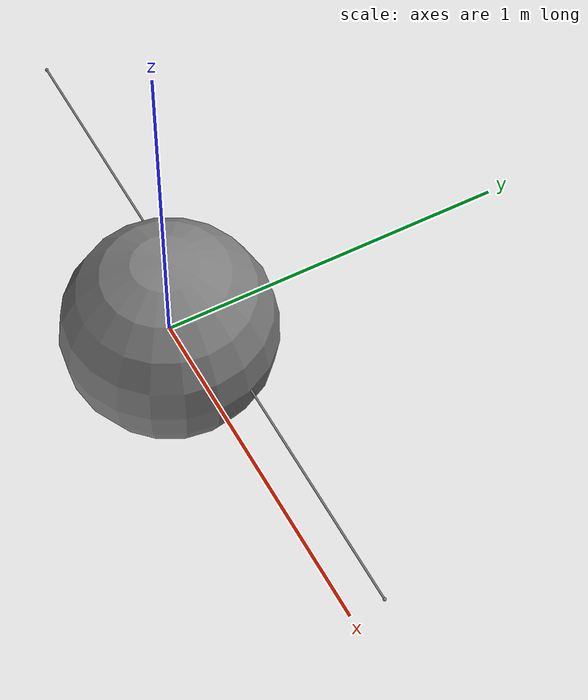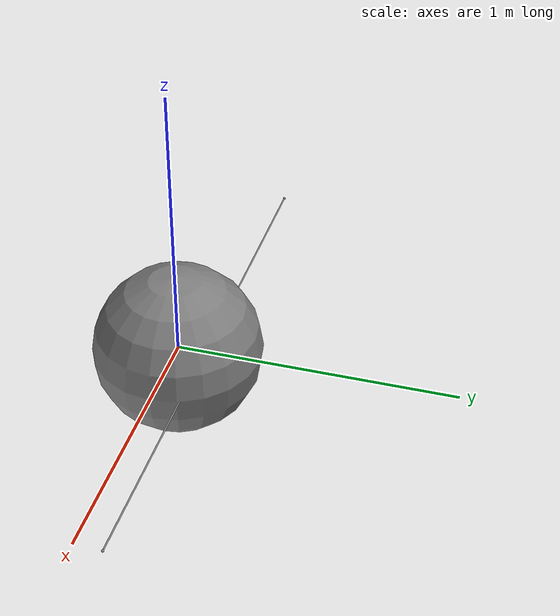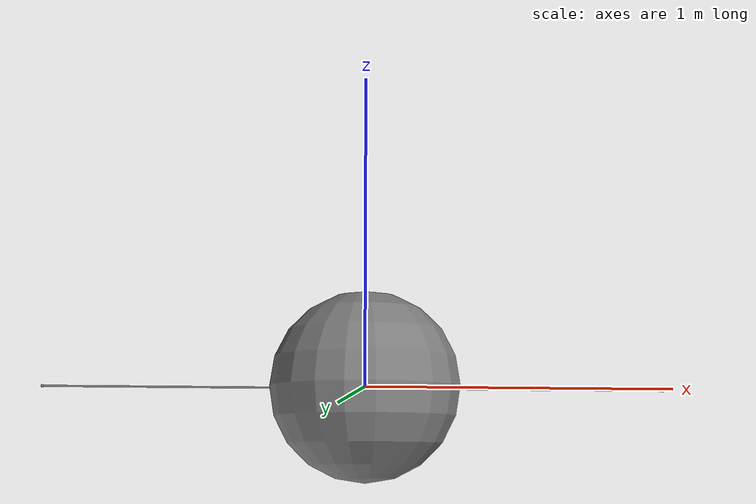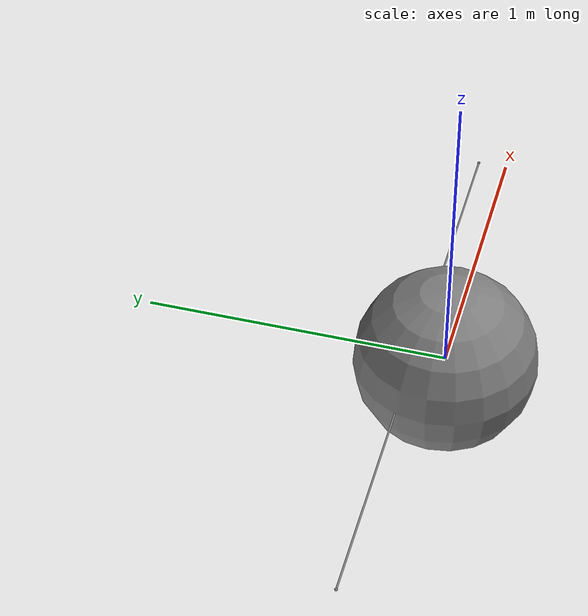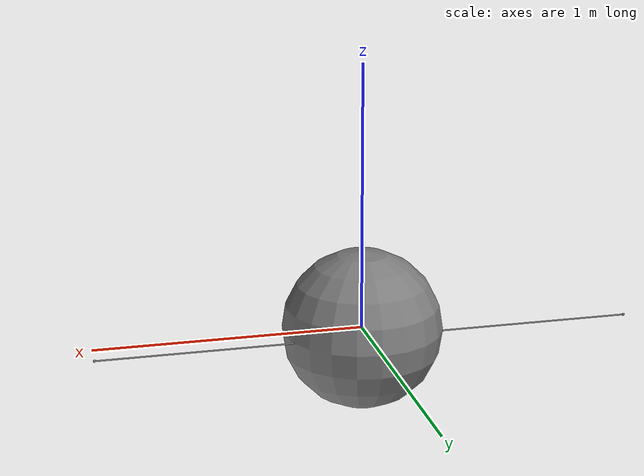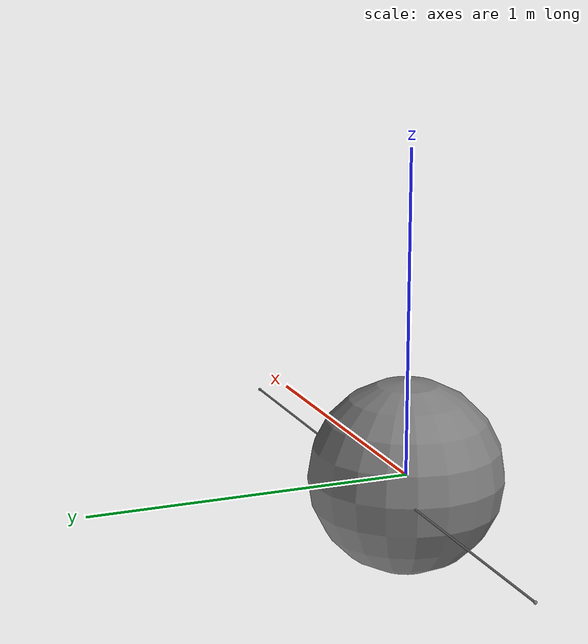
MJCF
<mujoco><option><flag constraint="disable"/></option><worldbody><site name="a" pos="-1 .1 0"/><site name="b" pos="1 .1 0"/><geom name="g" type="sphere" size=".3"/></worldbody><tendon><spatial stiffness="2" springlength="1"><site site="a"/><geom geom="g"/><site site="b"/></spatial></tendon></mujoco>
